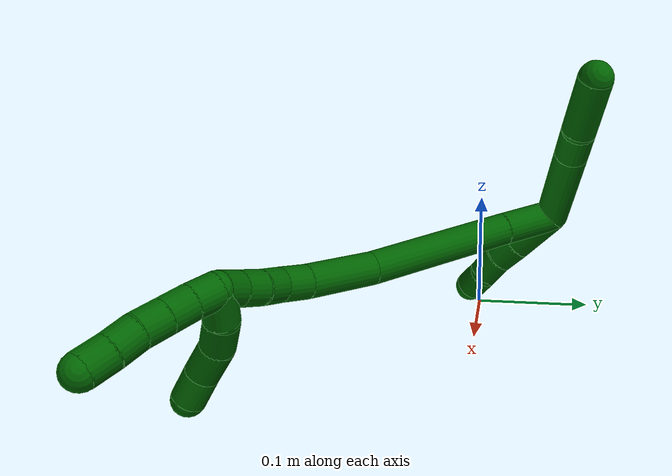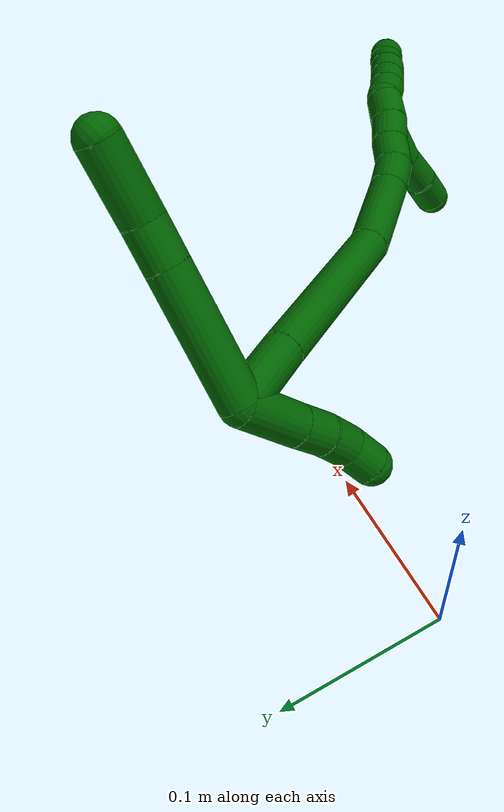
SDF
<sdf version="1.7">
 <world name="default">
  <model name="6">
   <static>0</static>
   <link name="6">
    <collision name="collision-cylinder-e_1_2_8">
     <pose>0.01235 -0.007248 -0.036922 2.94776 0.317146 2.04908</pose>
     <geometry><cylinder><radius>0.0125</radius><length>0.079204</length></cylinder></geometry>
     <surface>
      <friction><ode><mu>1.16</mu><mu2>1.16</mu2><slip1>0</slip1><slip2>0</slip2></ode></friction>
      <contact><ode><kp>1e+06</kp><kd>1</kd><max_vel>0</max_vel><min_depth>0.001</min_depth></ode></contact>
     </surface>
    </collision>
    <visual name="visual-cylinder-e_1_2_8">
     <pose>0.01235 -0.007248 -0.036922 2.94776 0.317146 2.04908</pose>
     <geometry><cylinder><radius>0.0125</radius><length>0.079204</length></cylinder></geometry>
     <material><ambient>0 0.392157 0.003922 1</ambient></material>
    </visual>
    <collision name="collision-cylinder-e_2_8_9">
     <pose>0.028683 -0.016831 -0.085746 2.9478 0.317263 2.04961</pose>
     <geometry><cylinder><radius>0.0125</radius><length>0.02553</length></cylinder></geometry>
     <surface>
      <friction><ode><mu>1.16</mu><mu2>1.16</mu2><slip1>0</slip1><slip2>0</slip2></ode></friction>
      <contact><ode><kp>1e+06</kp><kd>1</kd><max_vel>0</max_vel><min_depth>0.001</min_depth></ode></contact>
     </surface>
    </collision>
    <visual name="visual-cylinder-e_2_8_9">
     <pose>0.028683 -0.016831 -0.085746 2.9478 0.317263 2.04961</pose>
     <geometry><cylinder><radius>0.0125</radius><length>0.02553</length></cylinder></geometry>
     <material><ambient>0 0.392157 0.003922 1</ambient></material>
    </visual>
    <collision name="collision-cylinder-e_3_9_6">
     <pose>0.043732 -0.020797 -0.117322 3.05897 0.510928 2.82764</pose>
     <geometry><cylinder><radius>0.0125</radius><length>0.045266</length></cylinder></geometry>
     <surface>
      <friction><ode><mu>1.16</mu><mu2>1.16</mu2><slip1>0</slip1><slip2>0</slip2></ode></friction>
      <contact><ode><kp>1e+06</kp><kd>1</kd><max_vel>0</max_vel><min_depth>0.001</min_depth></ode></contact>
     </surface>
    </collision>
    <visual name="visual-cylinder-e_3_9_6">
     <pose>0.043732 -0.020797 -0.117322 3.05897 0.510928 2.82764</pose>
     <geometry><cylinder><radius>0.0125</radius><length>0.045266</length></cylinder></geometry>
     <material><ambient>0 0.392157 0.003922 1</ambient></material>
    </visual>
    <collision name="collision-cylinder-e_1_2_10">
     <pose>-0.007798 -0.010129 0.015158 0.589098 -0.404196 -0.12416</pose>
     <geometry><cylinder><radius>0.0125</radius><length>0.039658</length></cylinder></geometry>
     <surface>
      <friction><ode><mu>1.16</mu><mu2>1.16</mu2><slip1>0</slip1><slip2>0</slip2></ode></friction>
      <contact><ode><kp>1e+06</kp><kd>1</kd><max_vel>0</max_vel><min_depth>0.001</min_depth></ode></contact>
     </surface>
    </collision>
    <visual name="visual-cylinder-e_1_2_10">
     <pose>-0.007798 -0.010129 0.015158 0.589098 -0.404196 -0.12416</pose>
     <geometry><cylinder><radius>0.0125</radius><length>0.039658</length></cylinder></geometry>
     <material><ambient>0 0.392157 0.003922 1</ambient></material>
    </visual>
    <collision name="collision-cylinder-e_2_10_11">
     <pose>-0.019293 -0.02568 0.03804 0.61199 -0.373346 -0.119195</pose>
     <geometry><cylinder><radius>0.0125</radius><length>0.020269</length></cylinder></geometry>
     <surface>
      <friction><ode><mu>1.16</mu><mu2>1.16</mu2><slip1>0</slip1><slip2>0</slip2></ode></friction>
      <contact><ode><kp>1e+06</kp><kd>1</kd><max_vel>0</max_vel><min_depth>0.001</min_depth></ode></contact>
     </surface>
    </collision>
    <visual name="visual-cylinder-e_2_10_11">
     <pose>-0.019293 -0.02568 0.03804 0.61199 -0.373346 -0.119195</pose>
     <geometry><cylinder><radius>0.0125</radius><length>0.020269</length></cylinder></geometry>
     <material><ambient>0 0.392157 0.003922 1</ambient></material>
    </visual>
    <collision name="collision-cylinder-e_3_11_12">
     <pose>-0.027608 -0.035508 0.053507 0.517392 -0.478232 -0.128842</pose>
     <geometry><cylinder><radius>0.0125</radius><length>0.020069</length></cylinder></geometry>
     <surface>
      <friction><ode><mu>1.16</mu><mu2>1.16</mu2><slip1>0</slip1><slip2>0</slip2></ode></friction>
      <contact><ode><kp>1e+06</kp><kd>1</kd><max_vel>0</max_vel><min_depth>0.001</min_depth></ode></contact>
     </surface>
    </collision>
    <visual name="visual-cylinder-e_3_11_12">
     <pose>-0.027608 -0.035508 0.053507 0.517392 -0.478232 -0.128842</pose>
     <geometry><cylinder><radius>0.0125</radius><length>0.020069</length></cylinder></geometry>
     <material><ambient>0 0.392157 0.003922 1</ambient></material>
    </visual>
    <collision name="collision-cylinder-e_4_12_5">
     <pose>-0.03516 -0.042569 0.070435 0.28137 -0.297746 -0.042475</pose>
     <geometry><cylinder><radius>0.0125</radius><length>0.020004</length></cylinder></geometry>
     <surface>
      <friction><ode><mu>1.16</mu><mu2>1.16</mu2><slip1>0</slip1><slip2>0</slip2></ode></friction>
      <contact><ode><kp>1e+06</kp><kd>1</kd><max_vel>0</max_vel><min_depth>0.001</min_depth></ode></contact>
     </surface>
    </collision>
    <visual name="visual-cylinder-e_4_12_5">
     <pose>-0.03516 -0.042569 0.070435 0.28137 -0.297746 -0.042475</pose>
     <geometry><cylinder><radius>0.0125</radius><length>0.020004</length></cylinder></geometry>
     <material><ambient>0 0.392157 0.003922 1</ambient></material>
    </visual>
    <collision name="collision-cylinder-e_1_2_13">
     <pose>-0.005787 -0.022209 -0.001455 1.63621 -0.25437 -0.271375</pose>
     <geometry><cylinder><radius>0.0125</radius><length>0.045993</length></cylinder></geometry>
     <surface>
      <friction><ode><mu>1.16</mu><mu2>1.16</mu2><slip1>0</slip1><slip2>0</slip2></ode></friction>
      <contact><ode><kp>1e+06</kp><kd>1</kd><max_vel>0</max_vel><min_depth>0.001</min_depth></ode></contact>
     </surface>
    </collision>
    <visual name="visual-cylinder-e_1_2_13">
     <pose>-0.005787 -0.022209 -0.001455 1.63621 -0.25437 -0.271375</pose>
     <geometry><cylinder><radius>0.0125</radius><length>0.045993</length></cylinder></geometry>
     <material><ambient>0 0.392157 0.003922 1</ambient></material>
    </visual>
    <collision name="collision-cylinder-e_2_13_14">
     <pose>-0.026572 -0.099578 -0.005337 1.61476 -0.265245 -0.277022</pose>
     <geometry><cylinder><radius>0.0125</radius><length>0.114429</length></cylinder></geometry>
     <surface>
      <friction><ode><mu>1.16</mu><mu2>1.16</mu2><slip1>0</slip1><slip2>0</slip2></ode></friction>
      <contact><ode><kp>1e+06</kp><kd>1</kd><max_vel>0</max_vel><min_depth>0.001</min_depth></ode></contact>
     </surface>
    </collision>
    <visual name="visual-cylinder-e_2_13_14">
     <pose>-0.026572 -0.099578 -0.005337 1.61476 -0.265245 -0.277022</pose>
     <geometry><cylinder><radius>0.0125</radius><length>0.114429</length></cylinder></geometry>
     <material><ambient>0 0.392157 0.003922 1</ambient></material>
    </visual>
    <collision name="collision-cylinder-e_3_14_15">
     <pose>-0.0478 -0.181152 -0.016038 1.87439 -0.221361 -0.300275</pose>
     <geometry><cylinder><radius>0.0125</radius><length>0.056744</length></cylinder></geometry>
     <surface>
      <friction><ode><mu>1.16</mu><mu2>1.16</mu2><slip1>0</slip1><slip2>0</slip2></ode></friction>
      <contact><ode><kp>1e+06</kp><kd>1</kd><max_vel>0</max_vel><min_depth>0.001</min_depth></ode></contact>
     </surface>
    </collision>
    <visual name="visual-cylinder-e_3_14_15">
     <pose>-0.0478 -0.181152 -0.016038 1.87439 -0.221361 -0.300275</pose>
     <geometry><cylinder><radius>0.0125</radius><length>0.056744</length></cylinder></geometry>
     <material><ambient>0 0.392157 0.003922 1</ambient></material>
    </visual>
    <collision name="collision-cylinder-e_4_15_16">
     <pose>-0.055845 -0.217835 -0.028618 1.96779 -0.161629 -0.242359</pose>
     <geometry><cylinder><radius>0.0125</radius><length>0.022566</length></cylinder></geometry>
     <surface>
      <friction><ode><mu>1.16</mu><mu2>1.16</mu2><slip1>0</slip1><slip2>0</slip2></ode></friction>
      <contact><ode><kp>1e+06</kp><kd>1</kd><max_vel>0</max_vel><min_depth>0.001</min_depth></ode></contact>
     </surface>
    </collision>
    <visual name="visual-cylinder-e_4_15_16">
     <pose>-0.055845 -0.217835 -0.028618 1.96779 -0.161629 -0.242359</pose>
     <geometry><cylinder><radius>0.0125</radius><length>0.022566</length></cylinder></geometry>
     <material><ambient>0 0.392157 0.003922 1</ambient></material>
    </visual>
    <collision name="collision-cylinder-e_5_16_17">
     <pose>-0.059844 -0.235496 -0.039398 2.29018 -0.218719 -0.475146</pose>
     <geometry><cylinder><radius>0.0125</radius><length>0.020131</length></cylinder></geometry>
     <surface>
      <friction><ode><mu>1.16</mu><mu2>1.16</mu2><slip1>0</slip1><slip2>0</slip2></ode></friction>
      <contact><ode><kp>1e+06</kp><kd>1</kd><max_vel>0</max_vel><min_depth>0.001</min_depth></ode></contact>
     </surface>
    </collision>
    <visual name="visual-cylinder-e_5_16_17">
     <pose>-0.059844 -0.235496 -0.039398 2.29018 -0.218719 -0.475146</pose>
     <geometry><cylinder><radius>0.0125</radius><length>0.020131</length></cylinder></geometry>
     <material><ambient>0 0.392157 0.003922 1</ambient></material>
    </visual>
    <collision name="collision-cylinder-e_6_17_18">
     <pose>-0.063383 -0.251046 -0.051503 2.17483 -0.135815 -0.257698</pose>
     <geometry><cylinder><radius>0.0125</radius><length>0.02001</length></cylinder></geometry>
     <surface>
      <friction><ode><mu>1.16</mu><mu2>1.16</mu2><slip1>0</slip1><slip2>0</slip2></ode></friction>
      <contact><ode><kp>1e+06</kp><kd>1</kd><max_vel>0</max_vel><min_depth>0.001</min_depth></ode></contact>
     </surface>
    </collision>
    <visual name="visual-cylinder-e_6_17_18">
     <pose>-0.063383 -0.251046 -0.051503 2.17483 -0.135815 -0.257698</pose>
     <geometry><cylinder><radius>0.0125</radius><length>0.02001</length></cylinder></geometry>
     <material><ambient>0 0.392157 0.003922 1</ambient></material>
    </visual>
    <collision name="collision-cylinder-e_7_18_1">
     <pose>-0.066381 -0.26614 -0.064239 2.3684 -0.164029 -0.398484</pose>
     <geometry><cylinder><radius>0.0125</radius><length>0.020128</length></cylinder></geometry>
     <surface>
      <friction><ode><mu>1.16</mu><mu2>1.16</mu2><slip1>0</slip1><slip2>0</slip2></ode></friction>
      <contact><ode><kp>1e+06</kp><kd>1</kd><max_vel>0</max_vel><min_depth>0.001</min_depth></ode></contact>
     </surface>
    </collision>
    <visual name="visual-cylinder-e_7_18_1">
     <pose>-0.066381 -0.26614 -0.064239 2.3684 -0.164029 -0.398484</pose>
     <geometry><cylinder><radius>0.0125</radius><length>0.020128</length></cylinder></geometry>
     <material><ambient>0 0.392157 0.003922 1</ambient></material>
    </visual>
    <collision name="collision-cylinder-e_1_1_19">
     <pose>-0.072379 -0.28168 -0.073988 1.86879 -0.450495 -0.601354</pose>
     <geometry><cylinder><radius>0.0125</radius><length>0.02</length></cylinder></geometry>
     <surface>
      <friction><ode><mu>1.16</mu><mu2>1.16</mu2><slip1>0</slip1><slip2>0</slip2></ode></friction>
      <contact><ode><kp>1e+06</kp><kd>1</kd><max_vel>0</max_vel><min_depth>0.001</min_depth></ode></contact>
     </surface>
    </collision>
    <visual name="visual-cylinder-e_1_1_19">
     <pose>-0.072379 -0.28168 -0.073988 1.86879 -0.450495 -0.601354</pose>
     <geometry><cylinder><radius>0.0125</radius><length>0.02</length></cylinder></geometry>
     <material><ambient>0 0.392157 0.003922 1</ambient></material>
    </visual>
    <collision name="collision-cylinder-e_2_19_20">
     <pose>-0.081569 -0.298388 -0.07994 1.95847 -0.50476 -0.733016</pose>
     <geometry><cylinder><radius>0.0125</radius><length>0.02</length></cylinder></geometry>
     <surface>
      <friction><ode><mu>1.16</mu><mu2>1.16</mu2><slip1>0</slip1><slip2>0</slip2></ode></friction>
      <contact><ode><kp>1e+06</kp><kd>1</kd><max_vel>0</max_vel><min_depth>0.001</min_depth></ode></contact>
     </surface>
    </collision>
    <visual name="visual-cylinder-e_2_19_20">
     <pose>-0.081569 -0.298388 -0.07994 1.95847 -0.50476 -0.733016</pose>
     <geometry><cylinder><radius>0.0125</radius><length>0.02</length></cylinder></geometry>
     <material><ambient>0 0.392157 0.003922 1</ambient></material>
    </visual>
    <collision name="collision-cylinder-e_3_20_21">
     <pose>-0.091227 -0.314583 -0.086605 1.96403 -0.503248 -0.734945</pose>
     <geometry><cylinder><radius>0.0125</radius><length>0.02</length></cylinder></geometry>
     <surface>
      <friction><ode><mu>1.16</mu><mu2>1.16</mu2><slip1>0</slip1><slip2>0</slip2></ode></friction>
      <contact><ode><kp>1e+06</kp><kd>1</kd><max_vel>0</max_vel><min_depth>0.001</min_depth></ode></contact>
     </surface>
    </collision>
    <visual name="visual-cylinder-e_3_20_21">
     <pose>-0.091227 -0.314583 -0.086605 1.96403 -0.503248 -0.734945</pose>
     <geometry><cylinder><radius>0.0125</radius><length>0.02</length></cylinder></geometry>
     <material><ambient>0 0.392157 0.003922 1</ambient></material>
    </visual>
    <collision name="collision-cylinder-e_4_21_22">
     <pose>-0.101999 -0.330178 -0.092846 1.93783 -0.637152 -0.895267</pose>
     <geometry><cylinder><radius>0.0125</radius><length>0.02</length></cylinder></geometry>
     <surface>
      <friction><ode><mu>1.16</mu><mu2>1.16</mu2><slip1>0</slip1><slip2>0</slip2></ode></friction>
      <contact><ode><kp>1e+06</kp><kd>1</kd><max_vel>0</max_vel><min_depth>0.001</min_depth></ode></contact>
     </surface>
    </collision>
    <visual name="visual-cylinder-e_4_21_22">
     <pose>-0.101999 -0.330178 -0.092846 1.93783 -0.637152 -0.895267</pose>
     <geometry><cylinder><radius>0.0125</radius><length>0.02</length></cylinder></geometry>
     <material><ambient>0 0.392157 0.003922 1</ambient></material>
    </visual>
    <collision name="collision-cylinder-e_5_22_4">
     <pose>-0.113397 -0.345609 -0.098459 1.90222 -0.576203 -0.787389</pose>
     <geometry><cylinder><radius>0.0125</radius><length>0.02</length></cylinder></geometry>
     <surface>
      <friction><ode><mu>1.16</mu><mu2>1.16</mu2><slip1>0</slip1><slip2>0</slip2></ode></friction>
      <contact><ode><kp>1e+06</kp><kd>1</kd><max_vel>0</max_vel><min_depth>0.001</min_depth></ode></contact>
     </surface>
    </collision>
    <visual name="visual-cylinder-e_5_22_4">
     <pose>-0.113397 -0.345609 -0.098459 1.90222 -0.576203 -0.787389</pose>
     <geometry><cylinder><radius>0.0125</radius><length>0.02</length></cylinder></geometry>
     <material><ambient>0 0.392157 0.003922 1</ambient></material>
    </visual>
    <collision name="collision-cylinder-e_1_1_23">
     <pose>-0.076341 -0.271212 -0.061901 -0.194661 -0.71258 0.072645</pose>
     <geometry><cylinder><radius>0.0125</radius><length>0.025442</length></cylinder></geometry>
     <surface>
      <friction><ode><mu>1.16</mu><mu2>1.16</mu2><slip1>0</slip1><slip2>0</slip2></ode></friction>
      <contact><ode><kp>1e+06</kp><kd>1</kd><max_vel>0</max_vel><min_depth>0.001</min_depth></ode></contact>
     </surface>
    </collision>
    <visual name="visual-cylinder-e_1_1_23">
     <pose>-0.076341 -0.271212 -0.061901 -0.194661 -0.71258 0.072645</pose>
     <geometry><cylinder><radius>0.0125</radius><length>0.025442</length></cylinder></geometry>
     <material><ambient>0 0.392157 0.003922 1</ambient></material>
    </visual>
    <collision name="collision-cylinder-e_2_23_24">
     <pose>-0.091298 -0.27017 -0.042127 0.079246 -0.56981 -0.02322</pose>
     <geometry><cylinder><radius>0.0125</radius><length>0.024614</length></cylinder></geometry>
     <surface>
      <friction><ode><mu>1.16</mu><mu2>1.16</mu2><slip1>0</slip1><slip2>0</slip2></ode></friction>
      <contact><ode><kp>1e+06</kp><kd>1</kd><max_vel>0</max_vel><min_depth>0.001</min_depth></ode></contact>
     </surface>
    </collision>
    <visual name="visual-cylinder-e_2_23_24">
     <pose>-0.091298 -0.27017 -0.042127 0.079246 -0.56981 -0.02322</pose>
     <geometry><cylinder><radius>0.0125</radius><length>0.024614</length></cylinder></geometry>
     <material><ambient>0 0.392157 0.003922 1</ambient></material>
    </visual>
    <collision name="collision-cylinder-e_3_24_25">
     <pose>-0.105156 -0.275613 -0.021749 0.431147 -0.578309 -0.130104</pose>
     <geometry><cylinder><radius>0.0125</radius><length>0.026415</length></cylinder></geometry>
     <surface>
      <friction><ode><mu>1.16</mu><mu2>1.16</mu2><slip1>0</slip1><slip2>0</slip2></ode></friction>
      <contact><ode><kp>1e+06</kp><kd>1</kd><max_vel>0</max_vel><min_depth>0.001</min_depth></ode></contact>
     </surface>
    </collision>
    <visual name="visual-cylinder-e_3_24_25">
     <pose>-0.105156 -0.275613 -0.021749 0.431147 -0.578309 -0.130104</pose>
     <geometry><cylinder><radius>0.0125</radius><length>0.026415</length></cylinder></geometry>
     <material><ambient>0 0.392157 0.003922 1</ambient></material>
    </visual>
    <collision name="collision-cylinder-e_4_25_3">
     <pose>-0.119815 -0.284475 -0.003634 0.483916 -0.68464 -0.175438</pose>
     <geometry><cylinder><radius>0.0125</radius><length>0.023529</length></cylinder></geometry>
     <surface>
      <friction><ode><mu>1.16</mu><mu2>1.16</mu2><slip1>0</slip1><slip2>0</slip2></ode></friction>
      <contact><ode><kp>1e+06</kp><kd>1</kd><max_vel>0</max_vel><min_depth>0.001</min_depth></ode></contact>
     </surface>
    </collision>
    <visual name="visual-cylinder-e_4_25_3">
     <pose>-0.119815 -0.284475 -0.003634 0.483916 -0.68464 -0.175438</pose>
     <geometry><cylinder><radius>0.0125</radius><length>0.023529</length></cylinder></geometry>
     <material><ambient>0 0.392157 0.003922 1</ambient></material>
    </visual>
    <collision name="collision-sphere-3">
     <pose>-0.127255 -0.288715 0.004433 0 -0 0</pose>
     <geometry><sphere><radius>0.0125</radius></sphere></geometry>
     <surface>
      <friction><ode><mu>1.16</mu><mu2>1.16</mu2><slip1>0</slip1><slip2>0</slip2></ode></friction>
      <contact><ode><kp>1e+06</kp><kd>1</kd><max_vel>0</max_vel><min_depth>0.001</min_depth></ode></contact>
     </surface>
    </collision>
    <visual name="visual-sphere-3">
     <pose>-0.127255 -0.288715 0.004433 0 -0 0</pose>
     <geometry><sphere><radius>0.0125</radius></sphere></geometry>
     <material><ambient>0 0.392157 0.003922 1</ambient></material>
    </visual>
    <collision name="collision-sphere-25">
     <pose>-0.112376 -0.280235 -0.011701 0 -0 0</pose>
     <geometry><sphere><radius>0.0125</radius></sphere></geometry>
     <surface>
      <friction><ode><mu>1.16</mu><mu2>1.16</mu2><slip1>0</slip1><slip2>0</slip2></ode></friction>
      <contact><ode><kp>1e+06</kp><kd>1</kd><max_vel>0</max_vel><min_depth>0.001</min_depth></ode></contact>
     </surface>
    </collision>
    <visual name="visual-sphere-25">
     <pose>-0.112376 -0.280235 -0.011701 0 -0 0</pose>
     <geometry><sphere><radius>0.0125</radius></sphere></geometry>
     <material><ambient>0 0.392157 0.003922 1</ambient></material>
    </visual>
    <collision name="collision-sphere-24">
     <pose>-0.097937 -0.270991 -0.031797 0 -0 0</pose>
     <geometry><sphere><radius>0.0125</radius></sphere></geometry>
     <surface>
      <friction><ode><mu>1.16</mu><mu2>1.16</mu2><slip1>0</slip1><slip2>0</slip2></ode></friction>
      <contact><ode><kp>1e+06</kp><kd>1</kd><max_vel>0</max_vel><min_depth>0.001</min_depth></ode></contact>
     </surface>
    </collision>
    <visual name="visual-sphere-24">
     <pose>-0.097937 -0.270991 -0.031797 0 -0 0</pose>
     <geometry><sphere><radius>0.0125</radius></sphere></geometry>
     <material><ambient>0 0.392157 0.003922 1</ambient></material>
    </visual>
    <collision name="collision-sphere-23">
     <pose>-0.084658 -0.26935 -0.052457 0 -0 0</pose>
     <geometry><sphere><radius>0.0125</radius></sphere></geometry>
     <surface>
      <friction><ode><mu>1.16</mu><mu2>1.16</mu2><slip1>0</slip1><slip2>0</slip2></ode></friction>
      <contact><ode><kp>1e+06</kp><kd>1</kd><max_vel>0</max_vel><min_depth>0.001</min_depth></ode></contact>
     </surface>
    </collision>
    <visual name="visual-sphere-23">
     <pose>-0.084658 -0.26935 -0.052457 0 -0 0</pose>
     <geometry><sphere><radius>0.0125</radius></sphere></geometry>
     <material><ambient>0 0.392157 0.003922 1</ambient></material>
    </visual>
    <collision name="collision-sphere-4">
     <pose>-0.118845 -0.353538 -0.101188 0 -0 0</pose>
     <geometry><sphere><radius>0.0125</radius></sphere></geometry>
     <surface>
      <friction><ode><mu>1.16</mu><mu2>1.16</mu2><slip1>0</slip1><slip2>0</slip2></ode></friction>
      <contact><ode><kp>1e+06</kp><kd>1</kd><max_vel>0</max_vel><min_depth>0.001</min_depth></ode></contact>
     </surface>
    </collision>
    <visual name="visual-sphere-4">
     <pose>-0.118845 -0.353538 -0.101188 0 -0 0</pose>
     <geometry><sphere><radius>0.0125</radius></sphere></geometry>
     <material><ambient>0 0.392157 0.003922 1</ambient></material>
    </visual>
    <collision name="collision-sphere-22">
     <pose>-0.107948 -0.33768 -0.095731 0 -0 0</pose>
     <geometry><sphere><radius>0.0125</radius></sphere></geometry>
     <surface>
      <friction><ode><mu>1.16</mu><mu2>1.16</mu2><slip1>0</slip1><slip2>0</slip2></ode></friction>
      <contact><ode><kp>1e+06</kp><kd>1</kd><max_vel>0</max_vel><min_depth>0.001</min_depth></ode></contact>
     </surface>
    </collision>
    <visual name="visual-sphere-22">
     <pose>-0.107948 -0.33768 -0.095731 0 -0 0</pose>
     <geometry><sphere><radius>0.0125</radius></sphere></geometry>
     <material><ambient>0 0.392157 0.003922 1</ambient></material>
    </visual>
    <collision name="collision-sphere-21">
     <pose>-0.09605 -0.322675 -0.089962 0 -0 0</pose>
     <geometry><sphere><radius>0.0125</radius></sphere></geometry>
     <surface>
      <friction><ode><mu>1.16</mu><mu2>1.16</mu2><slip1>0</slip1><slip2>0</slip2></ode></friction>
      <contact><ode><kp>1e+06</kp><kd>1</kd><max_vel>0</max_vel><min_depth>0.001</min_depth></ode></contact>
     </surface>
    </collision>
    <visual name="visual-sphere-21">
     <pose>-0.09605 -0.322675 -0.089962 0 -0 0</pose>
     <geometry><sphere><radius>0.0125</radius></sphere></geometry>
     <material><ambient>0 0.392157 0.003922 1</ambient></material>
    </visual>
    <collision name="collision-sphere-20">
     <pose>-0.086405 -0.306492 -0.083249 0 -0 0</pose>
     <geometry><sphere><radius>0.0125</radius></sphere></geometry>
     <surface>
      <friction><ode><mu>1.16</mu><mu2>1.16</mu2><slip1>0</slip1><slip2>0</slip2></ode></friction>
      <contact><ode><kp>1e+06</kp><kd>1</kd><max_vel>0</max_vel><min_depth>0.001</min_depth></ode></contact>
     </surface>
    </collision>
    <visual name="visual-sphere-20">
     <pose>-0.086405 -0.306492 -0.083249 0 -0 0</pose>
     <geometry><sphere><radius>0.0125</radius></sphere></geometry>
     <material><ambient>0 0.392157 0.003922 1</ambient></material>
    </visual>
    <collision name="collision-sphere-11">
     <pose>-0.02299 -0.031101 0.045764 0 -0 0</pose>
     <geometry><sphere><radius>0.0125</radius></sphere></geometry>
     <surface>
      <friction><ode><mu>1.16</mu><mu2>1.16</mu2><slip1>0</slip1><slip2>0</slip2></ode></friction>
      <contact><ode><kp>1e+06</kp><kd>1</kd><max_vel>0</max_vel><min_depth>0.001</min_depth></ode></contact>
     </surface>
    </collision>
    <visual name="visual-sphere-11">
     <pose>-0.02299 -0.031101 0.045764 0 -0 0</pose>
     <geometry><sphere><radius>0.0125</radius></sphere></geometry>
     <material><ambient>0 0.392157 0.003922 1</ambient></material>
    </visual>
    <collision name="collision-sphere-10">
     <pose>-0.015597 -0.020259 0.030316 0 -0 0</pose>
     <geometry><sphere><radius>0.0125</radius></sphere></geometry>
     <surface>
      <friction><ode><mu>1.16</mu><mu2>1.16</mu2><slip1>0</slip1><slip2>0</slip2></ode></friction>
      <contact><ode><kp>1e+06</kp><kd>1</kd><max_vel>0</max_vel><min_depth>0.001</min_depth></ode></contact>
     </surface>
    </collision>
    <visual name="visual-sphere-10">
     <pose>-0.015597 -0.020259 0.030316 0 -0 0</pose>
     <geometry><sphere><radius>0.0125</radius></sphere></geometry>
     <material><ambient>0 0.392157 0.003922 1</ambient></material>
    </visual>
    <collision name="collision-sphere-6">
     <pose>0.054799 -0.022426 -0.136997 0 -0 0</pose>
     <geometry><sphere><radius>0.0125</radius></sphere></geometry>
     <surface>
      <friction><ode><mu>1.16</mu><mu2>1.16</mu2><slip1>0</slip1><slip2>0</slip2></ode></friction>
      <contact><ode><kp>1e+06</kp><kd>1</kd><max_vel>0</max_vel><min_depth>0.001</min_depth></ode></contact>
     </surface>
    </collision>
    <visual name="visual-sphere-6">
     <pose>0.054799 -0.022426 -0.136997 0 -0 0</pose>
     <geometry><sphere><radius>0.0125</radius></sphere></geometry>
     <material><ambient>0 0.392157 0.003922 1</ambient></material>
    </visual>
    <collision name="collision-sphere-9">
     <pose>0.032665 -0.019167 -0.097647 0 -0 0</pose>
     <geometry><sphere><radius>0.0125</radius></sphere></geometry>
     <surface>
      <friction><ode><mu>1.16</mu><mu2>1.16</mu2><slip1>0</slip1><slip2>0</slip2></ode></friction>
      <contact><ode><kp>1e+06</kp><kd>1</kd><max_vel>0</max_vel><min_depth>0.001</min_depth></ode></contact>
     </surface>
    </collision>
    <visual name="visual-sphere-9">
     <pose>0.032665 -0.019167 -0.097647 0 -0 0</pose>
     <geometry><sphere><radius>0.0125</radius></sphere></geometry>
     <material><ambient>0 0.392157 0.003922 1</ambient></material>
    </visual>
    <collision name="collision-sphere-2">
     <geometry><sphere><radius>0.0125</radius></sphere></geometry>
     <surface>
      <friction><ode><mu>1.16</mu><mu2>1.16</mu2><slip1>0</slip1><slip2>0</slip2></ode></friction>
      <contact><ode><kp>1e+06</kp><kd>1</kd><max_vel>0</max_vel><min_depth>0.001</min_depth></ode></contact>
     </surface>
    </collision>
    <visual name="visual-sphere-2">
     <geometry><sphere><radius>0.0125</radius></sphere></geometry>
     <material><ambient>0 0.392157 0.003922 1</ambient></material>
    </visual>
    <collision name="collision-sphere-19">
     <pose>-0.076733 -0.290285 -0.076631 0 -0 0</pose>
     <geometry><sphere><radius>0.0125</radius></sphere></geometry>
     <surface>
      <friction><ode><mu>1.16</mu><mu2>1.16</mu2><slip1>0</slip1><slip2>0</slip2></ode></friction>
      <contact><ode><kp>1e+06</kp><kd>1</kd><max_vel>0</max_vel><min_depth>0.001</min_depth></ode></contact>
     </surface>
    </collision>
    <visual name="visual-sphere-19">
     <pose>-0.076733 -0.290285 -0.076631 0 -0 0</pose>
     <geometry><sphere><radius>0.0125</radius></sphere></geometry>
     <material><ambient>0 0.392157 0.003922 1</ambient></material>
    </visual>
    <collision name="collision-sphere-8">
     <pose>0.0247 -0.014496 -0.073844 0 -0 0</pose>
     <geometry><sphere><radius>0.0125</radius></sphere></geometry>
     <surface>
      <friction><ode><mu>1.16</mu><mu2>1.16</mu2><slip1>0</slip1><slip2>0</slip2></ode></friction>
      <contact><ode><kp>1e+06</kp><kd>1</kd><max_vel>0</max_vel><min_depth>0.001</min_depth></ode></contact>
     </surface>
    </collision>
    <visual name="visual-sphere-8">
     <pose>0.0247 -0.014496 -0.073844 0 -0 0</pose>
     <geometry><sphere><radius>0.0125</radius></sphere></geometry>
     <material><ambient>0 0.392157 0.003922 1</ambient></material>
    </visual>
    <collision name="collision-sphere-12">
     <pose>-0.032225 -0.039914 0.061249 0 -0 0</pose>
     <geometry><sphere><radius>0.0125</radius></sphere></geometry>
     <surface>
      <friction><ode><mu>1.16</mu><mu2>1.16</mu2><slip1>0</slip1><slip2>0</slip2></ode></friction>
      <contact><ode><kp>1e+06</kp><kd>1</kd><max_vel>0</max_vel><min_depth>0.001</min_depth></ode></contact>
     </surface>
    </collision>
    <visual name="visual-sphere-12">
     <pose>-0.032225 -0.039914 0.061249 0 -0 0</pose>
     <geometry><sphere><radius>0.0125</radius></sphere></geometry>
     <material><ambient>0 0.392157 0.003922 1</ambient></material>
    </visual>
    <collision name="collision-sphere-5">
     <pose>-0.038094 -0.045224 0.079621 0 -0 0</pose>
     <geometry><sphere><radius>0.0125</radius></sphere></geometry>
     <surface>
      <friction><ode><mu>1.16</mu><mu2>1.16</mu2><slip1>0</slip1><slip2>0</slip2></ode></friction>
      <contact><ode><kp>1e+06</kp><kd>1</kd><max_vel>0</max_vel><min_depth>0.001</min_depth></ode></contact>
     </surface>
    </collision>
    <visual name="visual-sphere-5">
     <pose>-0.038094 -0.045224 0.079621 0 -0 0</pose>
     <geometry><sphere><radius>0.0125</radius></sphere></geometry>
     <material><ambient>0 0.392157 0.003922 1</ambient></material>
    </visual>
    <collision name="collision-sphere-13">
     <pose>-0.011574 -0.044418 -0.00291 0 -0 0</pose>
     <geometry><sphere><radius>0.0125</radius></sphere></geometry>
     <surface>
      <friction><ode><mu>1.16</mu><mu2>1.16</mu2><slip1>0</slip1><slip2>0</slip2></ode></friction>
      <contact><ode><kp>1e+06</kp><kd>1</kd><max_vel>0</max_vel><min_depth>0.001</min_depth></ode></contact>
     </surface>
    </collision>
    <visual name="visual-sphere-13">
     <pose>-0.011574 -0.044418 -0.00291 0 -0 0</pose>
     <geometry><sphere><radius>0.0125</radius></sphere></geometry>
     <material><ambient>0 0.392157 0.003922 1</ambient></material>
    </visual>
    <collision name="collision-sphere-14">
     <pose>-0.041571 -0.154738 -0.007763 0 -0 0</pose>
     <geometry><sphere><radius>0.0125</radius></sphere></geometry>
     <surface>
      <friction><ode><mu>1.16</mu><mu2>1.16</mu2><slip1>0</slip1><slip2>0</slip2></ode></friction>
      <contact><ode><kp>1e+06</kp><kd>1</kd><max_vel>0</max_vel><min_depth>0.001</min_depth></ode></contact>
     </surface>
    </collision>
    <visual name="visual-sphere-14">
     <pose>-0.041571 -0.154738 -0.007763 0 -0 0</pose>
     <geometry><sphere><radius>0.0125</radius></sphere></geometry>
     <material><ambient>0 0.392157 0.003922 1</ambient></material>
    </visual>
    <collision name="collision-sphere-15">
     <pose>-0.054029 -0.207566 -0.024313 0 -0 0</pose>
     <geometry><sphere><radius>0.0125</radius></sphere></geometry>
     <surface>
      <friction><ode><mu>1.16</mu><mu2>1.16</mu2><slip1>0</slip1><slip2>0</slip2></ode></friction>
      <contact><ode><kp>1e+06</kp><kd>1</kd><max_vel>0</max_vel><min_depth>0.001</min_depth></ode></contact>
     </surface>
    </collision>
    <visual name="visual-sphere-15">
     <pose>-0.054029 -0.207566 -0.024313 0 -0 0</pose>
     <geometry><sphere><radius>0.0125</radius></sphere></geometry>
     <material><ambient>0 0.392157 0.003922 1</ambient></material>
    </visual>
    <collision name="collision-sphere-16">
     <pose>-0.05766 -0.228105 -0.032924 0 -0 0</pose>
     <geometry><sphere><radius>0.0125</radius></sphere></geometry>
     <surface>
      <friction><ode><mu>1.16</mu><mu2>1.16</mu2><slip1>0</slip1><slip2>0</slip2></ode></friction>
      <contact><ode><kp>1e+06</kp><kd>1</kd><max_vel>0</max_vel><min_depth>0.001</min_depth></ode></contact>
     </surface>
    </collision>
    <visual name="visual-sphere-16">
     <pose>-0.05766 -0.228105 -0.032924 0 -0 0</pose>
     <geometry><sphere><radius>0.0125</radius></sphere></geometry>
     <material><ambient>0 0.392157 0.003922 1</ambient></material>
    </visual>
    <collision name="collision-sphere-17">
     <pose>-0.062029 -0.242887 -0.045873 0 -0 0</pose>
     <geometry><sphere><radius>0.0125</radius></sphere></geometry>
     <surface>
      <friction><ode><mu>1.16</mu><mu2>1.16</mu2><slip1>0</slip1><slip2>0</slip2></ode></friction>
      <contact><ode><kp>1e+06</kp><kd>1</kd><max_vel>0</max_vel><min_depth>0.001</min_depth></ode></contact>
     </surface>
    </collision>
    <visual name="visual-sphere-17">
     <pose>-0.062029 -0.242887 -0.045873 0 -0 0</pose>
     <geometry><sphere><radius>0.0125</radius></sphere></geometry>
     <material><ambient>0 0.392157 0.003922 1</ambient></material>
    </visual>
    <collision name="collision-sphere-18">
     <pose>-0.064738 -0.259205 -0.057133 0 -0 0</pose>
     <geometry><sphere><radius>0.0125</radius></sphere></geometry>
     <surface>
      <friction><ode><mu>1.16</mu><mu2>1.16</mu2><slip1>0</slip1><slip2>0</slip2></ode></friction>
      <contact><ode><kp>1e+06</kp><kd>1</kd><max_vel>0</max_vel><min_depth>0.001</min_depth></ode></contact>
     </surface>
    </collision>
    <visual name="visual-sphere-18">
     <pose>-0.064738 -0.259205 -0.057133 0 -0 0</pose>
     <geometry><sphere><radius>0.0125</radius></sphere></geometry>
     <material><ambient>0 0.392157 0.003922 1</ambient></material>
    </visual>
    <collision name="collision-sphere-1">
     <pose>-0.068025 -0.273074 -0.071345 0 -0 0</pose>
     <geometry><sphere><radius>0.0125</radius></sphere></geometry>
     <surface>
      <friction><ode><mu>1.16</mu><mu2>1.16</mu2><slip1>0</slip1><slip2>0</slip2></ode></friction>
      <contact><ode><kp>1e+06</kp><kd>1</kd><max_vel>0</max_vel><min_depth>0.001</min_depth></ode></contact>
     </surface>
    </collision>
    <visual name="visual-sphere-1">
     <pose>-0.068025 -0.273074 -0.071345 0 -0 0</pose>
     <geometry><sphere><radius>0.0125</radius></sphere></geometry>
     <material><ambient>0 0.392157 0.003922 1</ambient></material>
    </visual>
    <inertial>
     <pose>-0.037805 -0.141461 -0.03177 0 -0 0</pose>
     <mass>0.75</mass>
     <inertia><ixx>0.000125</ixx><ixy>0</ixy><ixz>0</ixz><iyy>7e-06</iyy><iyz>0</iyz><izz>0.000206</izz></inertia>
    </inertial>
   </link>
   <pose>0.109672 0.060659 0.109388 -3.03304 -1.06015 -2.82542</pose>
  </model>
 </world>
</sdf>
